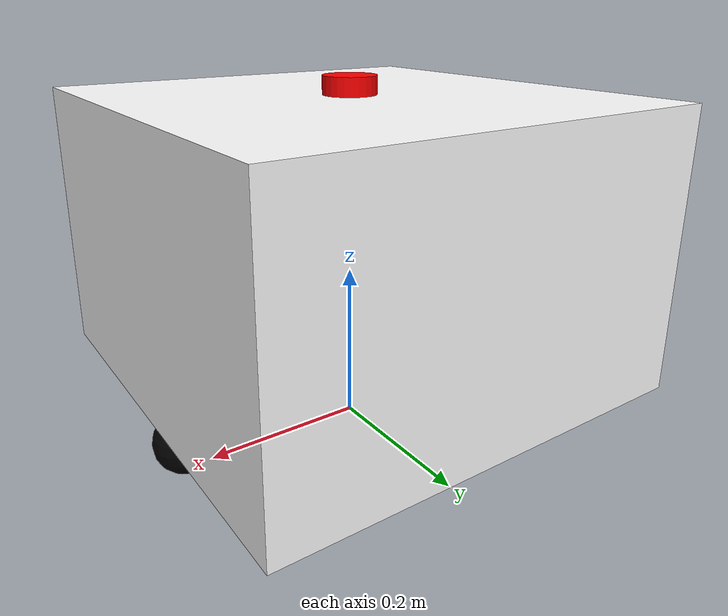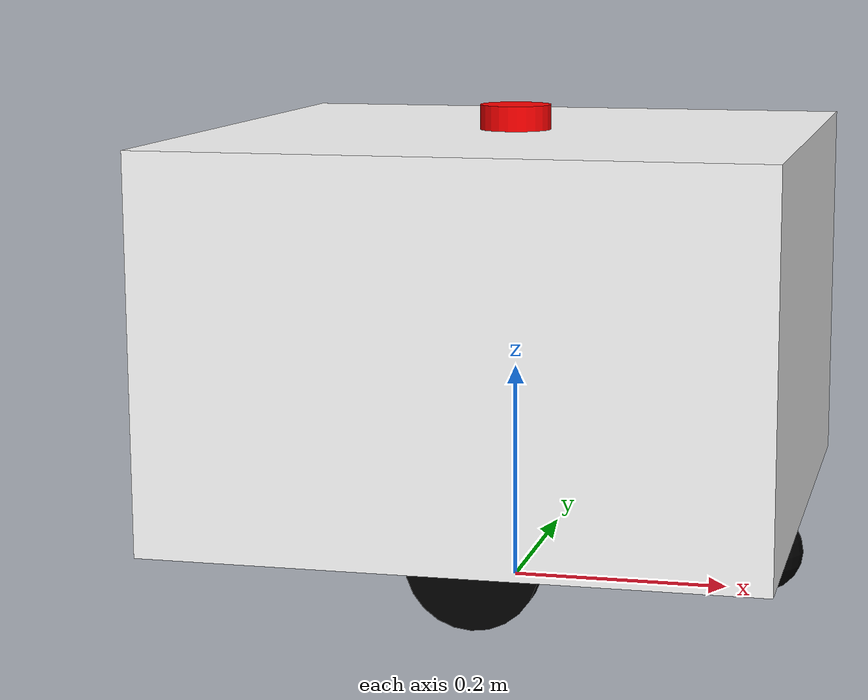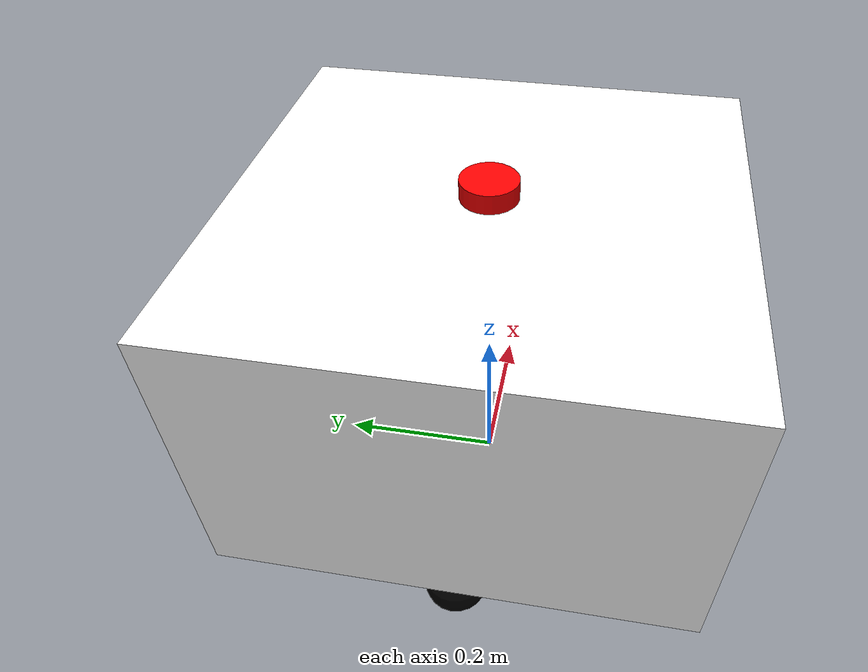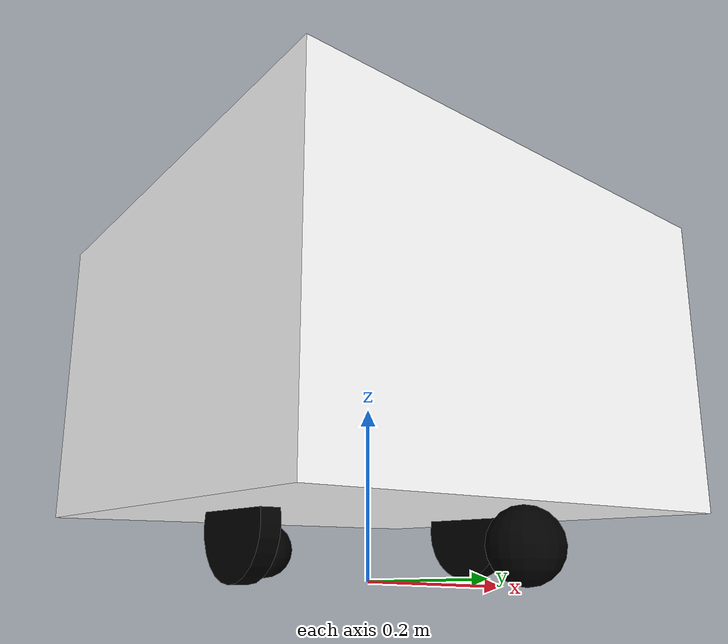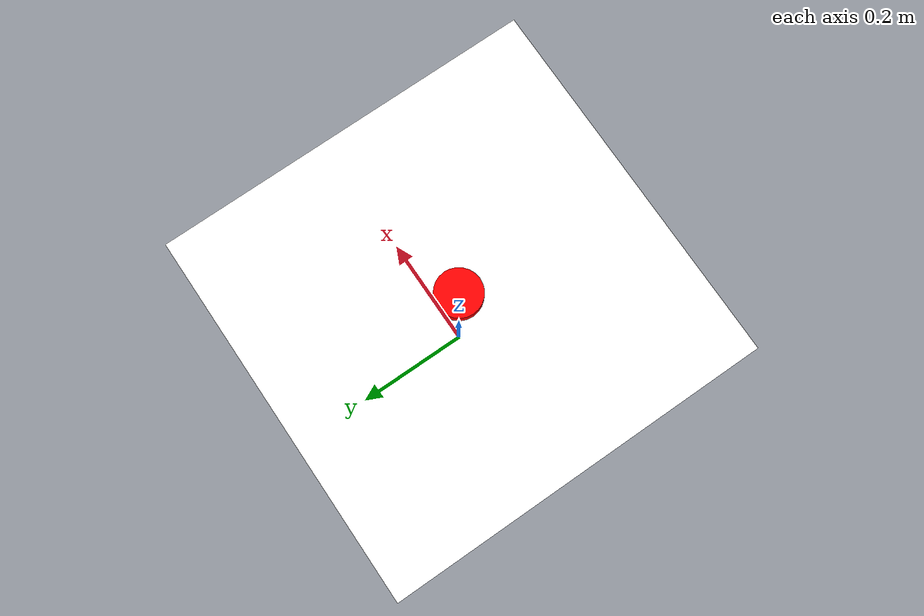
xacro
<?xml version="1.0"?>
<robot xmlns:xacro="http://www.ros.org/wiki/xacro"  name="robot">

    <xacro:arg name="use_ros2_control" default="true"/>
    <xacro:arg name="sim_mode" default="false"/>

    <xacro:include filename="robot_core.xacro" />

    <xacro:include filename="ros2_control.xacro" />

    <xacro:include filename="lidar.xacro" />
    <xacro:include filename="imu.xacro" />

</robot>

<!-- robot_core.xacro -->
<robot xmlns:xacro="http://www.ros.org/wiki/xacro"  name="robot">

    <xacro:include filename="inertial_macros.xacro"/>

    <material name="white">
        <color rgba="1 1 1 1" />
    </material>

    <material name="orange">
        <color rgba="1 0.3 0.1 1"/>
    </material>

    <material name="blue">
        <color rgba="0.2 0.2 1 1"/>
    </material>

    <material name="black">
        <color rgba="0 0 0 1"/>
    </material>

    <!-- base link -->

    <link name="base_link">

    </link>

    <!-- base footprint -->

    <joint name="base_footprint_joint" type="fixed">
        <parent link="base_link"/>
        <child link="base_footprint"/>
        <origin xyz="0 0 0" rpy="0 0 0"/>
    </joint>

    <link name="base_footprint">
    </link>

    <!-- chassis -->

    <joint name="chassis_joint" type="fixed">
        <parent link="base_link"/>
        <child link="chassis"/>
        <origin xyz="0 0 0" rpy="0 0 0"/>
    </joint>

    <link name="chassis">
        <visual>
        <origin xyz="0 0 0.2475"/>
            <geometry>
                <box size="0.54 0.55 0.345"/>
            </geometry>
            <material name="white"/>
        </visual>
        <collision>
        <origin xyz="0.0 0.0 0.2475"/>
            <geometry>
                <box size="0.54 0.55 0.345"/>
            </geometry>
            <material name="white"/>
        </collision>
        <xacro:inertial_box mass="5.0" x="0.54" y="0.55" z="0.345">
            <origin xyz="0 0 0.05" rpy="0 0 0"/>
        </xacro:inertial_box>
    </link>

    <!-- left wheel -->

    <joint name="left_wheel_joint" type="continuous">
        <parent link="base_link"/>
        <child link="left_wheel"/>
        <origin xyz="0 0.1675 0.06" rpy="-${pi/2} 0 0"/>
        <axis xyz="0 0 1"/>
    </joint>

    <link name="left_wheel">
        <visual>
            <geometry>
                <cylinder radius="0.06" length="0.023"/>
            </geometry>
            <material name="black" />
        </visual>
        <collision>
            <geometry>
                <cylinder radius="0.06" length="0.023"/>
            </geometry>
            <material name="black" />
        </collision>
        <xacro:inertial_cylinder mass="0.2" length="0.023" radius="0.06">
            <origin xyz="0 0 0" rpy="0 0 0"/>
        </xacro:inertial_cylinder>
    </link>

    <!-- right wheel -->

    <joint name="right_wheel_joint" type="continuous">
        <parent link="base_link"/>
        <child link="right_wheel"/>
        <origin xyz="0 -0.1675 0.06" rpy="${pi/2} 0 0"/>
        <axis xyz="0 0 -1"/>
    </joint>

    <link name="right_wheel">
        <visual>
            <geometry>
                <cylinder radius="0.06" length="0.023"/>
            </geometry>
            <material name="black" />
        </visual>
        <collision>
            <geometry>
                <cylinder radius="0.06" length="0.023"/>
            </geometry>
            <material name="black" />
        </collision>
        <xacro:inertial_cylinder mass="0.2" length="0.023" radius="0.06">
            <origin xyz="0 0 0" rpy="0 0 0"/>
        </xacro:inertial_cylinder>
    </link>

    <!-- front caster wheel -->
    <joint name="front_caster_joint" type="fixed">
        <parent link="chassis"/>
        <child link="front_caster_wheel"/>
        <origin xyz="0.2325 0 0.0375"/>
    </joint>

    <link name="front_caster_wheel">
        <visual>
            <geometry>
                <sphere radius="0.0375"/>
            </geometry>
            <material name="black"/>
        </visual>
        <collision>
            <geometry>
                <sphere radius="0.0375"/>
            </geometry>
        </collision>
        <xacro:inertial_sphere mass="0.05" radius="0.0375">
            <origin xyz="0 0 0" rpy="0 0 0"/>
        </xacro:inertial_sphere>
    </link>

    <!-- rear caster wheel -->
    <joint name="rear_caster_joint" type="fixed">
        <parent link="chassis"/>
        <child link="rear_caster_wheel"/>
        <origin xyz="-0.2325 0 0.0375"/>
    </joint>

    <link name="rear_caster_wheel">
        <visual>
            <geometry>
                <sphere radius="0.0375"/>
            </geometry>
            <material name="black"/>
        </visual>
        <collision>
            <geometry>
                <sphere radius="0.0375"/>
            </geometry>
        </collision>
        <xacro:inertial_sphere mass="0.05" radius="0.0375">
            <origin xyz="0 0 0" rpy="0 0 0"/>
        </xacro:inertial_sphere>
    </link>

    <!-- Gazebo color ref -->
    <gazebo reference="base_link">
        <material>
            Gazebo/White
        </material>
    </gazebo>

    <gazebo reference="left_wheel">
        <material>
            Gazebo/Black
        </material>
    </gazebo>

    <gazebo reference="right_wheel">
        <material>
            Gazebo/Black
        </material>
    </gazebo>

    <gazebo reference="front_caster_wheel">
        <material>
            Gazebo/Black
        </material>
        <mu1 value="0.001"/>
        <mu2 value="0.001"/>
    </gazebo>

    <gazebo reference="rear_caster_wheel">
        <material>
            Gazebo/Black
        </material>
        <mu1 value="0.001"/>
        <mu2 value="0.001"/>
    </gazebo>

</robot>

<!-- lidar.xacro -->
<robot xmlns:xacro="http://www.ros.org/wiki/xacro">

    <material name="red">
        <color rgba="1 0 0 1"/>
    </material>

    <joint name="laser_joint" type="fixed">
        <parent link="chassis"/>
        <child link="laser_frame"/>
        <origin xyz="0.0 0 0.43" rpy="0 0 0"/>
    </joint>

    <link name="laser_frame">
        <visual>
            <geometry>
                <cylinder radius="0.0325" length="0.025"/>
            </geometry>
            <material name="red"/>
        </visual>
        <collision>
            <geometry>
                <cylinder radius="0.0325" length="0.025"/>
            </geometry>
        </collision>
        <xacro:inertial_cylinder mass="0.1" length="0.0325" radius="0.025">
            <origin xyz="0 0 0" rpy="0 0 0"/>
        </xacro:inertial_cylinder>
    </link>

    <gazebo reference="laser_frame">
        <material>Gazebo/Red</material>

        <sensor name="laser" type="ray">
            <pose> 0 0 0 0 0 0 </pose>
            <visualize>true</visualize>
            <update_rate>10</update_rate>
            <ray>
                <scan>
                    <horizontal>
                        <samples>360</samples>
                        <min_angle>-3.14</min_angle>
                        <max_angle>3.14</max_angle>
                    </horizontal>
                </scan>
                <range>
                    <min>0.15</min>
                    <max>12</max>
                </range>
            </ray>
            <plugin name="laser_controller" filename="libgazebo_ros_ray_sensor.so">
                <ros>
                    <argument>~/out:=scan</argument>
                </ros>
                <output_type>sensor_msgs/LaserScan</output_type>
                <frame_name>laser_frame</frame_name>
            </plugin>
        </sensor>
    </gazebo>

</robot>

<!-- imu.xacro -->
<robot xmlns:xacro="http://www.ros.org/wiki/xacro">

    <joint name="imu_joint" type="fixed">
        <parent link="chassis"/>
        <child link="imu_link"/>
        <origin xyz="0 0 0" rpy="0 0 0"/>
    </joint>

    <link name="imu_link">
    </link>

    <gazebo reference="imu_link">
        <gravity>true</gravity>
        <sensor name="imu_sensor" type="imu">
        <always_on>true</always_on>
        <update_rate>100</update_rate>
        <visualize>true</visualize>
        <imu>
            <orientation>
            <x>
                <noise type="gaussian">
                <mean>0.0</mean>
                <stddev>2e-3</stddev>
                </noise>
            </x>
            <y>
                <noise type="gaussian">
                <mean>0.0</mean>
                <stddev>2e-3</stddev>
                </noise>
            </y>
            <z>
                <noise type="gaussian">
                <mean>0.0</mean>
                <stddev>2e-3</stddev>
                </noise>
            </z>
            </orientation>
            <angular_velocity>
            <x>
                <noise type="gaussian">
                <mean>0.0</mean>
                <stddev>2e-4</stddev>
                </noise>
            </x>
            <y>
                <noise type="gaussian">
                <mean>0.0</mean>
                <stddev>2e-4</stddev>
                </noise>
            </y>
            <z>
                <noise type="gaussian">
                <mean>0.0</mean>
                <stddev>2e-4</stddev>
                </noise>
            </z>
            </angular_velocity>
            <linear_acceleration>
            <x>
                <noise type="gaussian">
                <mean>0.0</mean>
                <stddev>1.7e-2</stddev>
                </noise>
            </x>
            <y>
                <noise type="gaussian">
                <mean>0.0</mean>
                <stddev>1.7e-2</stddev>
                </noise>
            </y>
            <z>
                <noise type="gaussian">
                <mean>0.0</mean>
                <stddev>1.7e-2</stddev>
                </noise>
            </z>
            </linear_acceleration>
        </imu>
        <plugin name="robo2023_imu" filename="libgazebo_ros_imu_sensor.so">
            <initial_orientation_as_reference>false</initial_orientation_as_reference>
            <frame_name>imu_link</frame_name>
            <ros>
                    <argument>~/out:=imu/data</argument>
                </ros>
            <output_type>sensor_msgs/Imu</output_type>
        </plugin>
        </sensor>
    </gazebo>

</robot>
